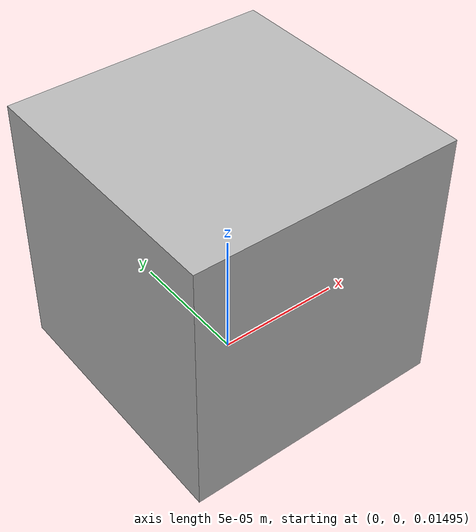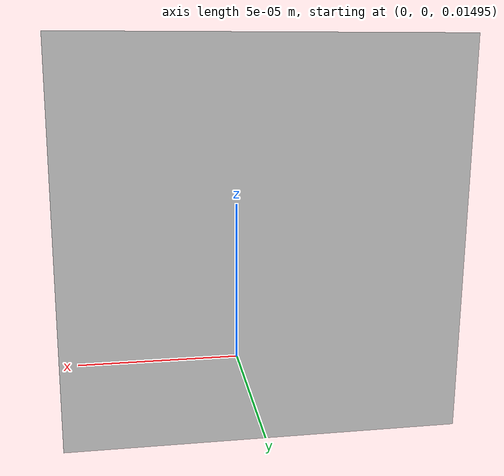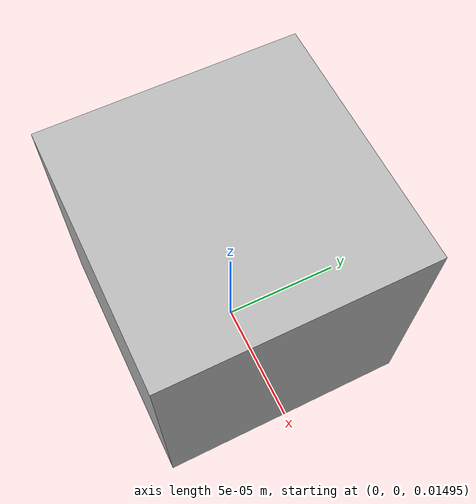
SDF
<?xml version="1.0"?>
<sdf version="1.6">
  <model name="realsense_cam">
    <plugin name="realsense_plugin" filename="libRealSensePlugin.so"/>
    <pose>0 0 0.015 0 0 0</pose>
    <link name="link">
      <inertial>
        <mass>0.00001</mass>
        <inertia>
          <ixx>2.407e-10</ixx>
          <ixy>0</ixy>
          <ixz>0</ixz>
          <iyy>2.407e-10</iyy>
          <iyz>0</iyz>
          <izz>2.407e-10</izz>
          </inertia>
      </inertial>
      <visual name='visual'>
        <geometry>
          <box>
            <size>0.0001 0.0001 0.0001</size>
          </box>
        </geometry>
      </visual>
      <sensor name="color" type="camera">
        <pose>0 -0.046 0.004 0 0 0</pose>
        <camera name="__default__">
          <horizontal_fov>1.047</horizontal_fov>
          <image>
            <width>640</width>
            <height>480</height>
            <format>RGB_INT8</format>
          </image>
          <clip>
            <near>0.1</near>
            <far>100</far>
          </clip>
          <noise>
            <type>gaussian</type>
            <mean>0.0</mean>
            <stddev>0.007</stddev>
          </noise>
        </camera>
        <always_on>1</always_on>
        <update_rate>30</update_rate>
        <visualize>1</visualize>
      </sensor>
      <sensor name="ired1" type="camera">
        <pose>0 -0.06 0.004 0 0 0</pose>
        <camera name="__default__">
          <horizontal_fov>1.047</horizontal_fov>
          <image>
            <width>640</width>
            <height>480</height>
            <format>L_INT8</format>
          </image>
          <clip>
            <near>0.1</near>
            <far>100</far>
          </clip>
          <noise>
            <type>gaussian</type>
            <mean>0.0</mean>
            <stddev>0.007</stddev>
          </noise>
        </camera>
        <always_on>1</always_on>
        <update_rate>30</update_rate>
        <visualize>0</visualize>
        <plugin name="realsense_left_camera_plugin" filename="libgazebo_ros_camera.so">
          <camera_name>realsense_left</camera_name>
          <frameName>realsense_left_camera_link</frameName>
          <hack_baseline>0</hack_baseline>
        </plugin>
      </sensor>
      <sensor name="ired2" type="camera">
        <pose>0 0.01 0.004 0 0 0</pose>
        <camera name="__default__">
          <horizontal_fov>1.047</horizontal_fov>
          <image>
            <width>640</width>
            <height>480</height>
            <format>L_INT8</format>
          </image>
          <clip>
            <near>0.1</near>
            <far>100</far>
          </clip>
          <noise>
            <type>gaussian</type>
            <mean>0.0</mean>
            <stddev>0.007</stddev>
          </noise>
        </camera>
        <always_on>1</always_on>
        <update_rate>30</update_rate>
        <visualize>0</visualize>
        <plugin name="realsense_right_camera_plugin" filename="libgazebo_ros_camera.so">
          <camera_name>realsense_right</camera_name>
          <frameName>realsense_right_camera_link</frameName>
          <hack_baseline>0</hack_baseline>
        </plugin>
      </sensor>
      <sensor name="depth" type="depth">
        <pose>0 -0.03 0.004 0 0 0</pose>
        <camera name="__default__">
          <horizontal_fov>1.047</horizontal_fov>
          <image>
            <width>640</width>
            <height>480</height>
          </image>
          <clip>
            <near>0.1</near>
            <far>100</far>
          </clip>
          <noise>
            <type>gaussian</type>
            <mean>0.0</mean>
            <stddev>0.007</stddev>
          </noise>
        </camera>
        <always_on>1</always_on>
        <update_rate>30</update_rate>
        <visualize>0</visualize>
        <plugin name="realsense_depth_plugin" filename="libgazebo_ros_camera.so">
          <camera_name>realsense</camera_name>
          <frameName>realsense_camera_link</frameName>
          <hack_baseline>0</hack_baseline>
          <min_depth>0.001</min_depth>
        </plugin>
      </sensor>
      <self_collide>0</self_collide>
      <kinematic>0</kinematic>
    </link>
  </model>
</sdf>
